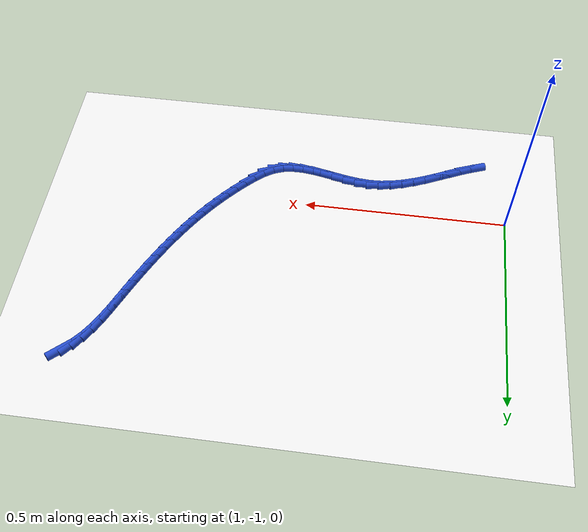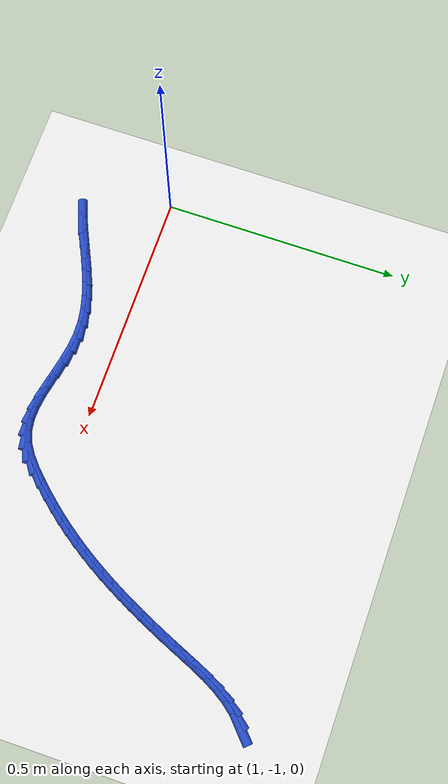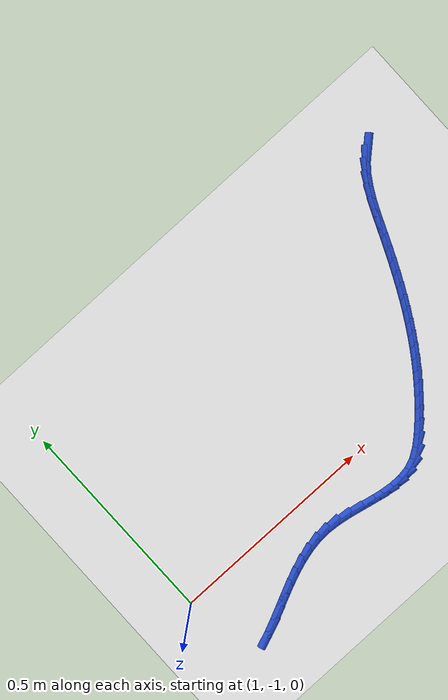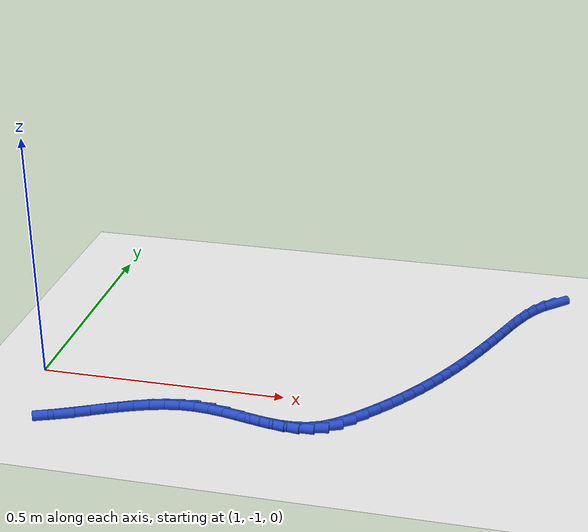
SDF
<sdf version="1.6">
 <world name="default">
  <model name="ground_plane">
   <static>1</static>
   <link name="link">
    <collision name="collision">
     <geometry><plane><normal>0 0 1</normal><size>100 100</size></plane></geometry>
     <surface><friction><ode><mu>100</mu><mu2>50</mu2></ode></friction></surface>
    </collision>
    <visual name="visual">
     <cast_shadows>0</cast_shadows>
     <geometry><plane><normal>0 0 1</normal><size>100 100</size></plane></geometry>
     <material>
      <script><uri>file://media/materials/scripts/gazebo.material</uri><name>Gazebo/WhiteGlow</name></script>
     </material>
    </visual>
   </link>
  </model>
  <model name="line">
   <link name="link_154">
    <pose>1.9909666674938629 -0.5067807579916709 0.01 0 1.57 0.739959898626104</pose>
    <collision name="collision">
     <geometry><cylinder><radius>0.01</radius><length>0.08</length></cylinder></geometry>
    </collision>
    <visual name="visual">
     <material>
      <script><name>Gazebo/Blue</name><uri>file://media/materials/scripts/gazebo.material</uri></script>
     </material>
     <geometry><cylinder><radius>0.01</radius><length>0.08</length></cylinder></geometry>
    </visual>
   </link>
   <link name="link_155">
    <pose>1.9708016726368174 -0.5251917209516849 0.01 0 1.57 0.8879039832765999</pose>
    <collision name="collision">
     <geometry><cylinder><radius>0.01</radius><length>0.08</length></cylinder></geometry>
    </collision>
    <visual name="visual">
     <material>
      <script><name>Gazebo/Blue</name><uri>file://media/materials/scripts/gazebo.material</uri></script>
     </material>
     <geometry><cylinder><radius>0.01</radius><length>0.08</length></cylinder></geometry>
    </visual>
   </link>
   <link name="link_156">
    <pose>1.9531214480725456 -0.5469264146910405 0.01 0 1.57 1.0001711423737298</pose>
    <collision name="collision">
     <geometry><cylinder><radius>0.01</radius><length>0.08</length></cylinder></geometry>
    </collision>
    <visual name="visual">
     <material>
      <script><name>Gazebo/Blue</name><uri>file://media/materials/scripts/gazebo.material</uri></script>
     </material>
     <geometry><cylinder><radius>0.01</radius><length>0.08</length></cylinder></geometry>
    </visual>
   </link>
   <link name="link_157">
    <pose>1.9374792943233217 -0.5712967984501656 0.01 0 1.57 1.0804102111523053</pose>
    <collision name="collision">
     <geometry><cylinder><radius>0.01</radius><length>0.08</length></cylinder></geometry>
    </collision>
    <visual name="visual">
     <material>
      <script><name>Gazebo/Blue</name><uri>file://media/materials/scripts/gazebo.material</uri></script>
     </material>
     <geometry><cylinder><radius>0.01</radius><length>0.08</length></cylinder></geometry>
    </visual>
   </link>
   <link name="link_158">
    <pose>1.9234285119114176 -0.5976148314694891 0.01 0 1.57 1.1330815491557191</pose>
    <collision name="collision">
     <geometry><cylinder><radius>0.01</radius><length>0.08</length></cylinder></geometry>
    </collision>
    <visual name="visual">
     <material>
      <script><name>Gazebo/Blue</name><uri>file://media/materials/scripts/gazebo.material</uri></script>
     </material>
     <geometry><cylinder><radius>0.01</radius><length>0.08</length></cylinder></geometry>
    </visual>
   </link>
   <link name="link_159">
    <pose>1.9105224013591062 -0.6251924729894406 0.01 0 1.57 1.1615850387622797</pose>
    <collision name="collision">
     <geometry><cylinder><radius>0.01</radius><length>0.08</length></cylinder></geometry>
    </collision>
    <visual name="visual">
     <material>
      <script><name>Gazebo/Blue</name><uri>file://media/materials/scripts/gazebo.material</uri></script>
     </material>
     <geometry><cylinder><radius>0.01</radius><length>0.08</length></cylinder></geometry>
    </visual>
   </link>
   <link name="link_160">
    <pose>1.8983142631886594 -0.6533416822504484 0.01 0 1.57 1.167742747323838</pose>
    <collision name="collision">
     <geometry><cylinder><radius>0.01</radius><length>0.08</length></cylinder></geometry>
    </collision>
    <visual name="visual">
     <material>
      <script><name>Gazebo/Blue</name><uri>file://media/materials/scripts/gazebo.material</uri></script>
     </material>
     <geometry><cylinder><radius>0.01</radius><length>0.08</length></cylinder></geometry>
    </visual>
   </link>
   <link name="link_161">
    <pose>1.8863595176563912 -0.6813783172588365 0.01 0 1.57 1.159057074854923</pose>
    <collision name="collision">
     <geometry><cylinder><radius>0.01</radius><length>0.08</length></cylinder></geometry>
    </collision>
    <visual name="visual">
     <material>
      <script><name>Gazebo/Blue</name><uri>file://media/materials/scripts/gazebo.material</uri></script>
     </material>
     <geometry><cylinder><radius>0.01</radius><length>0.08</length></cylinder></geometry>
    </visual>
   </link>
   <link name="link_162">
    <pose>1.8743523621638831 -0.7088734848355096 0.01 0 1.57 1.1472210129903615</pose>
    <collision name="collision">
     <geometry><cylinder><radius>0.01</radius><length>0.08</length></cylinder></geometry>
    </collision>
    <visual name="visual">
     <material>
      <script><name>Gazebo/Blue</name><uri>file://media/materials/scripts/gazebo.material</uri></script>
     </material>
     <geometry><cylinder><radius>0.01</radius><length>0.08</length></cylinder></geometry>
    </visual>
   </link>
   <link name="link_163">
    <pose>1.8622090435775778 -0.7358067009999754 0.01 0 1.57 1.1332622466191442</pose>
    <collision name="collision">
     <geometry><cylinder><radius>0.01</radius><length>0.08</length></cylinder></geometry>
    </collision>
    <visual name="visual">
     <material>
      <script><name>Gazebo/Blue</name><uri>file://media/materials/scripts/gazebo.material</uri></script>
     </material>
     <geometry><cylinder><radius>0.01</radius><length>0.08</length></cylinder></geometry>
    </visual>
   </link>
   <link name="link_164">
    <pose>1.8498657452035079 -0.7621941502920715 0.01 0 1.57 1.1171553635782139</pose>
    <collision name="collision">
     <geometry><cylinder><radius>0.01</radius><length>0.08</length></cylinder></geometry>
    </collision>
    <visual name="visual">
     <material>
      <script><name>Gazebo/Blue</name><uri>file://media/materials/scripts/gazebo.material</uri></script>
     </material>
     <geometry><cylinder><radius>0.01</radius><length>0.08</length></cylinder></geometry>
    </visual>
   </link>
   <link name="link_165">
    <pose>1.8372586503477069 -0.7880520172516365 0.01 0 1.57 1.0988980906370878</pose>
    <collision name="collision">
     <geometry><cylinder><radius>0.01</radius><length>0.08</length></cylinder></geometry>
    </collision>
    <visual name="visual">
     <material>
      <script><name>Gazebo/Blue</name><uri>file://media/materials/scripts/gazebo.material</uri></script>
     </material>
     <geometry><cylinder><radius>0.01</radius><length>0.08</length></cylinder></geometry>
    </visual>
   </link>
   <link name="link_166">
    <pose>1.8243239423162088 -0.8133964864185066 0.01 0 1.57 1.0785148246612488</pose>
    <collision name="collision">
     <geometry><cylinder><radius>0.01</radius><length>0.08</length></cylinder></geometry>
    </collision>
    <visual name="visual">
     <material>
      <script><name>Gazebo/Blue</name><uri>file://media/materials/scripts/gazebo.material</uri></script>
     </material>
     <geometry><cylinder><radius>0.01</radius><length>0.08</length></cylinder></geometry>
    </visual>
   </link>
   <link name="link_167">
    <pose>1.8109978044150463 -0.8382437423325203 0.01 0 1.57 1.0560598671355497</pose>
    <collision name="collision">
     <geometry><cylinder><radius>0.01</radius><length>0.08</length></cylinder></geometry>
    </collision>
    <visual name="visual">
     <material>
      <script><name>Gazebo/Blue</name><uri>file://media/materials/scripts/gazebo.material</uri></script>
     </material>
     <geometry><cylinder><radius>0.01</radius><length>0.08</length></cylinder></geometry>
    </visual>
   </link>
   <link name="link_168">
    <pose>1.7972164199502534 -0.8626099695335152 0.01 0 1.57 1.0316200537442637</pose>
    <collision name="collision">
     <geometry><cylinder><radius>0.01</radius><length>0.08</length></cylinder></geometry>
    </collision>
    <visual name="visual">
     <material>
      <script><name>Gazebo/Blue</name><uri>file://media/materials/scripts/gazebo.material</uri></script>
     </material>
     <geometry><cylinder><radius>0.01</radius><length>0.08</length></cylinder></geometry>
    </visual>
   </link>
   <link name="link_169">
    <pose>1.782915972227864 -0.8865113525613296 0.01 0 1.57 1.0053164329150122</pose>
    <collision name="collision">
     <geometry><cylinder><radius>0.01</radius><length>0.08</length></cylinder></geometry>
    </collision>
    <visual name="visual">
     <material>
      <script><name>Gazebo/Blue</name><uri>file://media/materials/scripts/gazebo.material</uri></script>
     </material>
     <geometry><cylinder><radius>0.01</radius><length>0.08</length></cylinder></geometry>
    </visual>
   </link>
   <link name="link_170">
    <pose>1.7680326445539096 -0.9099640759558004 0.01 0 1.57 0.9773046453296037</pose>
    <collision name="collision">
     <geometry><cylinder><radius>0.01</radius><length>0.08</length></cylinder></geometry>
    </collision>
    <visual name="visual">
     <material>
      <script><name>Gazebo/Blue</name><uri>file://media/materials/scripts/gazebo.material</uri></script>
     </material>
     <geometry><cylinder><radius>0.01</radius><length>0.08</length></cylinder></geometry>
    </visual>
   </link>
   <link name="link_171">
    <pose>1.7525026202344256 -0.9329843242567659 0.01 0 1.57 0.9477737042552643</pose>
    <collision name="collision">
     <geometry><cylinder><radius>0.01</radius><length>0.08</length></cylinder></geometry>
    </collision>
    <visual name="visual">
     <material>
      <script><name>Gazebo/Blue</name><uri>file://media/materials/scripts/gazebo.material</uri></script>
     </material>
     <geometry><cylinder><radius>0.01</radius><length>0.08</length></cylinder></geometry>
    </visual>
   </link>
   <link name="link_172">
    <pose>1.736262082575444 -0.9555882820040644 0.01 0 1.57 0.916942981897074</pose>
    <collision name="collision">
     <geometry><cylinder><radius>0.01</radius><length>0.08</length></cylinder></geometry>
    </collision>
    <visual name="visual">
     <material>
      <script><name>Gazebo/Blue</name><uri>file://media/materials/scripts/gazebo.material</uri></script>
     </material>
     <geometry><cylinder><radius>0.01</radius><length>0.08</length></cylinder></geometry>
    </visual>
   </link>
   <link name="link_173">
    <pose>1.7192472148829991 -0.9777921337375322 0.01 0 1.57 0.8850573666305341</pose>
    <collision name="collision">
     <geometry><cylinder><radius>0.01</radius><length>0.08</length></cylinder></geometry>
    </collision>
    <visual name="visual">
     <material>
      <script><name>Gazebo/Blue</name><uri>file://media/materials/scripts/gazebo.material</uri></script>
     </material>
     <geometry><cylinder><radius>0.01</radius><length>0.08</length></cylinder></geometry>
    </visual>
   </link>
   <link name="link_174">
    <pose>1.7013942004631244 -0.9996120639970079 0.01 0 1.57 0.8523807528873327</pose>
    <collision name="collision">
     <geometry><cylinder><radius>0.01</radius><length>0.08</length></cylinder></geometry>
    </collision>
    <visual name="visual">
     <material>
      <script><name>Gazebo/Blue</name><uri>file://media/materials/scripts/gazebo.material</uri></script>
     </material>
     <geometry><cylinder><radius>0.01</radius><length>0.08</length></cylinder></geometry>
    </visual>
   </link>
   <link name="link_175">
    <pose>1.6826392226218525 -1.0210642573223287 0.01 0 1.57 0.8191882294651467</pose>
    <collision name="collision">
     <geometry><cylinder><radius>0.01</radius><length>0.08</length></cylinder></geometry>
    </collision>
    <visual name="visual">
     <material>
      <script><name>Gazebo/Blue</name><uri>file://media/materials/scripts/gazebo.material</uri></script>
     </material>
     <geometry><cylinder><radius>0.01</radius><length>0.08</length></cylinder></geometry>
    </visual>
   </link>
   <link name="link_176">
    <pose>1.6629184646652175 -1.0421648982533331 0.01 0 1.57 0.7835137789066883</pose>
    <collision name="collision">
     <geometry><cylinder><radius>0.01</radius><length>0.08</length></cylinder></geometry>
    </collision>
    <visual name="visual">
     <material>
      <script><name>Gazebo/Blue</name><uri>file://media/materials/scripts/gazebo.material</uri></script>
     </material>
     <geometry><cylinder><radius>0.01</radius><length>0.08</length></cylinder></geometry>
    </visual>
   </link>
   <link name="link_177">
    <pose>1.6421648144637482 -1.0628404797607014 0.01 0 1.57 0.7147466089199243</pose>
    <collision name="collision">
     <geometry><cylinder><radius>0.01</radius><length>0.08</length></cylinder></geometry>
    </collision>
    <visual name="visual">
     <material>
      <script><name>Gazebo/Blue</name><uri>file://media/materials/scripts/gazebo.material</uri></script>
     </material>
     <geometry><cylinder><radius>0.01</radius><length>0.08</length></cylinder></geometry>
    </visual>
   </link>
   <link name="link_178">
    <pose>1.6202680023954537 -1.0818428812564531 0.01 0 1.57 0.5820601236119427</pose>
    <collision name="collision">
     <geometry><cylinder><radius>0.01</radius><length>0.08</length></cylinder></geometry>
    </collision>
    <visual name="visual">
     <material>
      <script><name>Gazebo/Blue</name><uri>file://media/materials/scripts/gazebo.material</uri></script>
     </material>
     <geometry><cylinder><radius>0.01</radius><length>0.08</length></cylinder></geometry>
    </visual>
   </link>
   <link name="link_179">
    <pose>1.5970874257580012 -1.0970984094567993 0.01 0 1.57 0.37426509778000205</pose>
    <collision name="collision">
     <geometry><cylinder><radius>0.01</radius><length>0.08</length></cylinder></geometry>
    </collision>
    <visual name="visual">
     <material>
      <script><name>Gazebo/Blue</name><uri>file://media/materials/scripts/gazebo.material</uri></script>
     </material>
     <geometry><cylinder><radius>0.01</radius><length>0.08</length></cylinder></geometry>
    </visual>
   </link>
   <link name="link_180">
    <pose>1.5725059899362868 -1.1067534579312381 0.01 0 1.57 0.16042557148392775</pose>
    <collision name="collision">
     <geometry><cylinder><radius>0.01</radius><length>0.08</length></cylinder></geometry>
    </collision>
    <visual name="visual">
     <material>
      <script><name>Gazebo/Blue</name><uri>file://media/materials/scripts/gazebo.material</uri></script>
     </material>
     <geometry><cylinder><radius>0.01</radius><length>0.08</length></cylinder></geometry>
    </visual>
   </link>
   <link name="link_181">
    <pose>1.546609034487395 -1.110944003443072 0.01 0 1.57 -0.0053506238398393965</pose>
    <collision name="collision">
     <geometry><cylinder><radius>0.01</radius><length>0.08</length></cylinder></geometry>
    </collision>
    <visual name="visual">
     <material>
      <script><name>Gazebo/Blue</name><uri>file://media/materials/scripts/gazebo.material</uri></script>
     </material>
     <geometry><cylinder><radius>0.01</radius><length>0.08</length></cylinder></geometry>
    </visual>
   </link>
   <link name="link_182">
    <pose>1.519582971717685 -1.1107993957673172 0.01 0 1.57 -0.11896795999679023</pose>
    <collision name="collision">
     <geometry><cylinder><radius>0.01</radius><length>0.08</length></cylinder></geometry>
    </collision>
    <visual name="visual">
     <material>
      <script><name>Gazebo/Blue</name><uri>file://media/materials/scripts/gazebo.material</uri></script>
     </material>
     <geometry><cylinder><radius>0.01</radius><length>0.08</length></cylinder></geometry>
    </visual>
   </link>
   <link name="link_183">
    <pose>1.4916149594179373 -1.1074563115214235 0.01 0 1.57 -0.18599895535718775</pose>
    <collision name="collision">
     <geometry><cylinder><radius>0.01</radius><length>0.08</length></cylinder></geometry>
    </collision>
    <visual name="visual">
     <material>
      <script><name>Gazebo/Blue</name><uri>file://media/materials/scripts/gazebo.material</uri></script>
     </material>
     <geometry><cylinder><radius>0.01</radius><length>0.08</length></cylinder></geometry>
    </visual>
   </link>
   <link name="link_184">
    <pose>1.4628921553789345 -1.1020514273228383 0.01 0 1.57 -0.21283853776815703</pose>
    <collision name="collision">
     <geometry><cylinder><radius>0.01</radius><length>0.08</length></cylinder></geometry>
    </collision>
    <visual name="visual">
     <material>
      <script><name>Gazebo/Blue</name><uri>file://media/materials/scripts/gazebo.material</uri></script>
     </material>
     <geometry><cylinder><radius>0.01</radius><length>0.08</length></cylinder></geometry>
    </visual>
   </link>
   <link name="link_185">
    <pose>1.4336017173914588 -1.0957214197890115 0.01 0 1.57 -0.20336000695899634</pose>
    <collision name="collision">
     <geometry><cylinder><radius>0.01</radius><length>0.08</length></cylinder></geometry>
    </collision>
    <visual name="visual">
     <material>
      <script><name>Gazebo/Blue</name><uri>file://media/materials/scripts/gazebo.material</uri></script>
     </material>
     <geometry><cylinder><radius>0.01</radius><length>0.08</length></cylinder></geometry>
    </visual>
   </link>
   <link name="link_186">
    <pose>1.4039308032462918 -1.089602965537391 0.01 0 1.57 -0.15839233318182067</pose>
    <collision name="collision">
     <geometry><cylinder><radius>0.01</radius><length>0.08</length></cylinder></geometry>
    </collision>
    <visual name="visual">
     <material>
      <script><name>Gazebo/Blue</name><uri>file://media/materials/scripts/gazebo.material</uri></script>
     </material>
     <geometry><cylinder><radius>0.01</radius><length>0.08</length></cylinder></geometry>
    </visual>
   </link>
   <link name="link_187">
    <pose>1.3740665707342157 -1.084832741185426 0.01 0 1.57 -0.07635903656125517</pose>
    <collision name="collision">
     <geometry><cylinder><radius>0.01</radius><length>0.08</length></cylinder></geometry>
    </collision>
    <visual name="visual">
     <material>
      <script><name>Gazebo/Blue</name><uri>file://media/materials/scripts/gazebo.material</uri></script>
     </material>
     <geometry><cylinder><radius>0.01</radius><length>0.08</length></cylinder></geometry>
    </visual>
   </link>
   <link name="link_188">
    <pose>1.3441961776460118 -1.0825474233505645 0.01 0 1.57 0.041924543740134754</pose>
    <collision name="collision">
     <geometry><cylinder><radius>0.01</radius><length>0.08</length></cylinder></geometry>
    </collision>
    <visual name="visual">
     <material>
      <script><name>Gazebo/Blue</name><uri>file://media/materials/scripts/gazebo.material</uri></script>
     </material>
     <geometry><cylinder><radius>0.01</radius><length>0.08</length></cylinder></geometry>
    </visual>
   </link>
   <link name="link_189">
    <pose>1.3144990163765309 -1.0837931932557419 0.01 0 1.57 0.16146421628795266</pose>
    <collision name="collision">
     <geometry><cylinder><radius>0.01</radius><length>0.08</length></cylinder></geometry>
    </collision>
    <visual name="visual">
     <material>
      <script><name>Gazebo/Blue</name><uri>file://media/materials/scripts/gazebo.material</uri></script>
     </material>
     <geometry><cylinder><radius>0.01</radius><length>0.08</length></cylinder></geometry>
    </visual>
   </link>
   <link name="link_190">
    <pose>1.2850661848066023 -1.0885872766206202 0.01 0 1.57 0.25860317958669493</pose>
    <collision name="collision">
     <geometry><cylinder><radius>0.01</radius><length>0.08</length></cylinder></geometry>
    </collision>
    <visual name="visual">
     <material>
      <script><name>Gazebo/Blue</name><uri>file://media/materials/scripts/gazebo.material</uri></script>
     </material>
     <geometry><cylinder><radius>0.01</radius><length>0.08</length></cylinder></geometry>
    </visual>
   </link>
   <link name="link_191">
    <pose>1.2559327420915132 -1.0962938421127622 0.01 0 1.57 0.3333563705859443</pose>
    <collision name="collision">
     <geometry><cylinder><radius>0.01</radius><length>0.08</length></cylinder></geometry>
    </collision>
    <visual name="visual">
     <material>
      <script><name>Gazebo/Blue</name><uri>file://media/materials/scripts/gazebo.material</uri></script>
     </material>
     <geometry><cylinder><radius>0.01</radius><length>0.08</length></cylinder></geometry>
    </visual>
   </link>
   <link name="link_192">
    <pose>1.2271328541205637 -1.1062666485688941 0.01 0 1.57 0.38715714221990666</pose>
    <collision name="collision">
     <geometry><cylinder><radius>0.01</radius><length>0.08</length></cylinder></geometry>
    </collision>
    <visual name="visual">
     <material>
      <script><name>Gazebo/Blue</name><uri>file://media/materials/scripts/gazebo.material</uri></script>
     </material>
     <geometry><cylinder><radius>0.01</radius><length>0.08</length></cylinder></geometry>
    </visual>
   </link>
   <link name="link_193">
    <pose>1.1987006867830519 -1.1178594548257441 0.01 0 1.57 0.42145683207349044</pose>
    <collision name="collision">
     <geometry><cylinder><radius>0.01</radius><length>0.08</length></cylinder></geometry>
    </collision>
    <visual name="visual">
     <material>
      <script><name>Gazebo/Blue</name><uri>file://media/materials/scripts/gazebo.material</uri></script>
     </material>
     <geometry><cylinder><radius>0.01</radius><length>0.08</length></cylinder></geometry>
    </visual>
   </link>
   <link name="link_194">
    <pose>1.170670405968278 -1.1304260197200393 0.01 0 1.57 0.4371262686209642</pose>
    <collision name="collision">
     <geometry><cylinder><radius>0.01</radius><length>0.08</length></cylinder></geometry>
    </collision>
    <visual name="visual">
     <material>
      <script><name>Gazebo/Blue</name><uri>file://media/materials/scripts/gazebo.material</uri></script>
     </material>
     <geometry><cylinder><radius>0.01</radius><length>0.08</length></cylinder></geometry>
    </visual>
   </link>
   <link name="link_195">
    <pose>1.1430761775655411 -1.143320102088507 0.01 0 1.57 0.4341262125619542</pose>
    <collision name="collision">
     <geometry><cylinder><radius>0.01</radius><length>0.08</length></cylinder></geometry>
    </collision>
    <visual name="visual">
     <material>
      <script><name>Gazebo/Blue</name><uri>file://media/materials/scripts/gazebo.material</uri></script>
     </material>
     <geometry><cylinder><radius>0.01</radius><length>0.08</length></cylinder></geometry>
    </visual>
   </link>
   <link name="link_196">
    <pose>1.1159521674641408 -1.1558954607678744 0.01 0 1.57 0.4112844660508101</pose>
    <collision name="collision">
     <geometry><cylinder><radius>0.01</radius><length>0.08</length></cylinder></geometry>
    </collision>
    <visual name="visual">
     <material>
      <script><name>Gazebo/Blue</name><uri>file://media/materials/scripts/gazebo.material</uri></script>
     </material>
     <geometry><cylinder><radius>0.01</radius><length>0.08</length></cylinder></geometry>
    </visual>
   </link>
   <link name="link_197">
    <pose>1.0893325415533754 -1.167505854594869 0.01 0 1.57 0.36610472309084147</pose>
    <collision name="collision">
     <geometry><cylinder><radius>0.01</radius><length>0.08</length></cylinder></geometry>
    </collision>
    <visual name="visual">
     <material>
      <script><name>Gazebo/Blue</name><uri>file://media/materials/scripts/gazebo.material</uri></script>
     </material>
     <geometry><cylinder><radius>0.01</radius><length>0.08</length></cylinder></geometry>
    </visual>
   </link>
  </model>
 </world>
</sdf>
